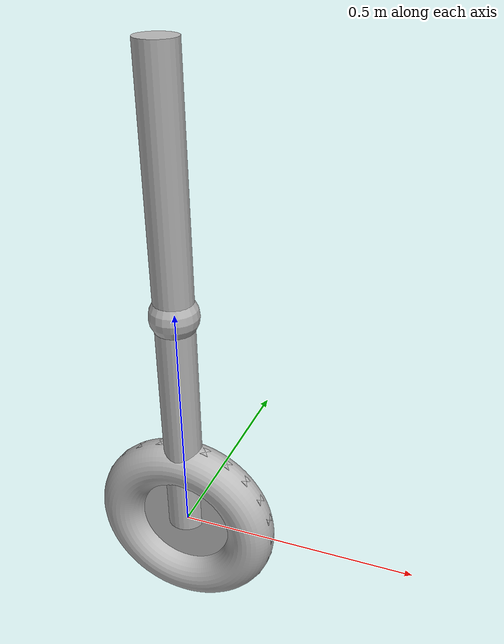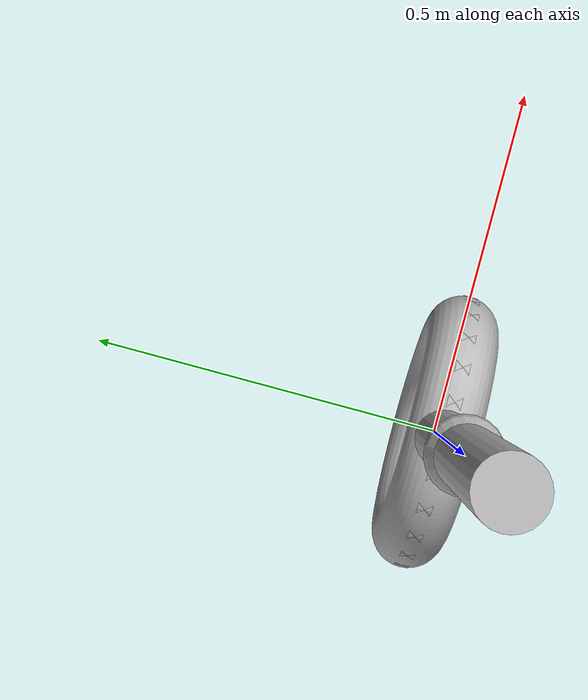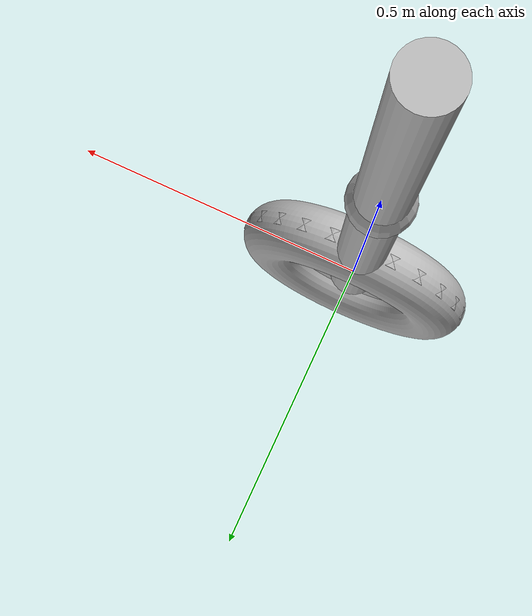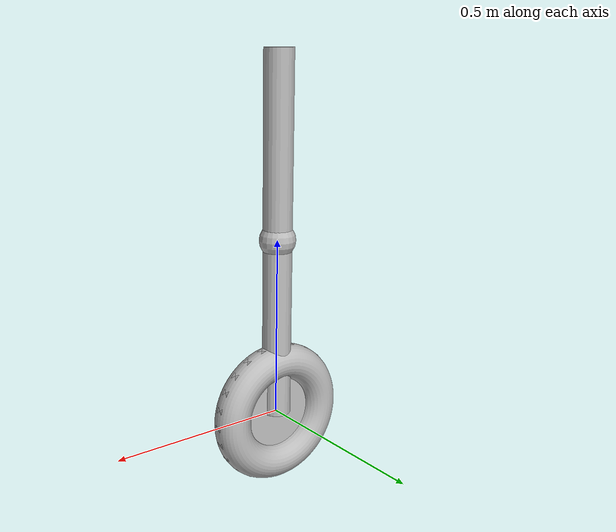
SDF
<?xml version='1.0' ?>

<!-- THIS FILE IS GENERATED FROM mip.rsdf -->

<sdf version='1.6'>
  <model name='mip'>
    <link name='wheel'>
      <pose>0 0 0 0 0 0</pose>
      <inertial>
        <mass>0.2</mass>
        <inertia>
          <ixx>0.002006666666666667</ixx>
          <iyy>0.004000000000000001</iyy>
          <izz>0.002006666666666667</izz>
          <ixy>0</ixy><ixz>0</ixz><iyz>0</iyz>
        </inertia>
      </inertial>

      <visual name='vis_wheel'>
        <pose>0 0 0 0 0 0</pose>
        <geometry>
          <mesh>
            <uri>torus.obj</uri>
            <scale>0.2 0.2 0.2</scale>
          </mesh>
        </geometry>
      </visual>
      <visual name='vis_wheel2'>
        <pose>0 0 0 1.570795 0 0</pose>
        <geometry>
          <cylinder>
            <radius>0.2</radius>
            <length>0.02</length>
          </cylinder>
        </geometry>
      </visual>
      <collision name='col_wheel'>
        <pose>0 0 0 1.570795 0 0</pose>
        <geometry>
          <cylinder>
            <radius>0.2</radius>
            <length>0.02</length>
          </cylinder>
        </geometry>
      </collision>

    </link>

    <link name='pole'>
      <gravity>true</gravity>
      <self_collide>0</self_collide>
      <pose>0 0 0.5 0 0 0</pose>
      <inertial>
        <mass>0.1</mass>
        <inertia>
          <ixx>0.03333333333333333</ixx>
          <iyy>0.03333333333333333</iyy>
          <izz>0</izz>
          <ixy>0</ixy><ixz>0</ixz><iyz>0</iyz>
        </inertia>
      </inertial>

      <visual name='vis_cylinder'>
        <pose>0 0 0 0 0 0</pose>
        <geometry>
          <cylinder>
            <radius>0.04</radius>
            <length>1.0</length>
          </cylinder>
        </geometry>
      </visual>
      <collision name='col_cylinder'>
        <pose>0 0 0 0 0 0</pose>
        <geometry>
          <cylinder>
            <radius>0.04</radius>
            <length>1.0</length>
          </cylinder>
        </geometry>
      </collision>
    </link>

    <link name='load'>
      <pose>0 0 0.5 0 0 0</pose>
      <inertial>
        <mass>0.4</mass>
        <!-- A point mass has zero rotational inertia.
             We must specify small values since otherwise sdformat throws an
             exception. -->
        <inertia>
          <ixx>1.0e-20</ixx><iyy>1.0e-20</iyy><izz>1.0e-20</izz>
          <ixy>0</ixy><ixz>0</ixz><iyz>0</iyz>
        </inertia>
      </inertial>
      <visual name='load_vis'>
        <pose>0 0 0 0 0 0</pose>
        <geometry>
          <sphere>
            <radius>0.05</radius>
          </sphere>
        </geometry>
      </visual>
    </link>

    <link name='x_dummy'>
      <pose>0 0 0 0 0 0</pose>
      <inertial>
        <mass>1e-6</mass>
      </inertial>
    </link>

    <link name='z_dummy'>
      <pose>0 0 0 0 0 0</pose>
      <inertial>
        <mass>1e-6</mass>
      </inertial>
    </link>

    <joint name='z' type='prismatic'>
      <parent>world</parent>
      <child>z_dummy</child>
      <pose>0 0 0 0 0 0</pose>
      <axis>
        <xyz>0 0 1.0</xyz>
        <limit>
          <effort>0.0</effort>
        </limit>
      </axis>
    </joint>

    <joint name='x' type='prismatic'>
      <parent>z_dummy</parent>
      <child>x_dummy</child>
      <pose>0 0 0 0 0 0</pose>
      <axis>
        <xyz>1.0 0 0</xyz>
        <limit>
          <effort>0.0</effort>
        </limit>
      </axis>
    </joint>

    <joint name='theta' type='revolute'>
      <parent>x_dummy</parent>
      <child>pole</child>
      <pose>0 0 -0.5 0 0 0</pose>
      <axis>
        <xyz>0 1.0 0</xyz>
        <limit>
          <effort>0.0</effort>
        </limit>
      </axis>
    </joint>

    <joint name='wheel_pole_joint' type='revolute'>
      <!--With respect to child frame-->
      <pose>0 0 0 0 0 0</pose>
      <parent>pole</parent>
      <child>wheel</child>
      <axis>
        <xyz>0 1.0 0</xyz>
      </axis>
    </joint>

    <joint name='load_fixture' type='fixed'>
      <parent>pole</parent>
      <child>load</child>
      <pose>0 0 0 0 0 0</pose>
    </joint>

  </model>
</sdf>
